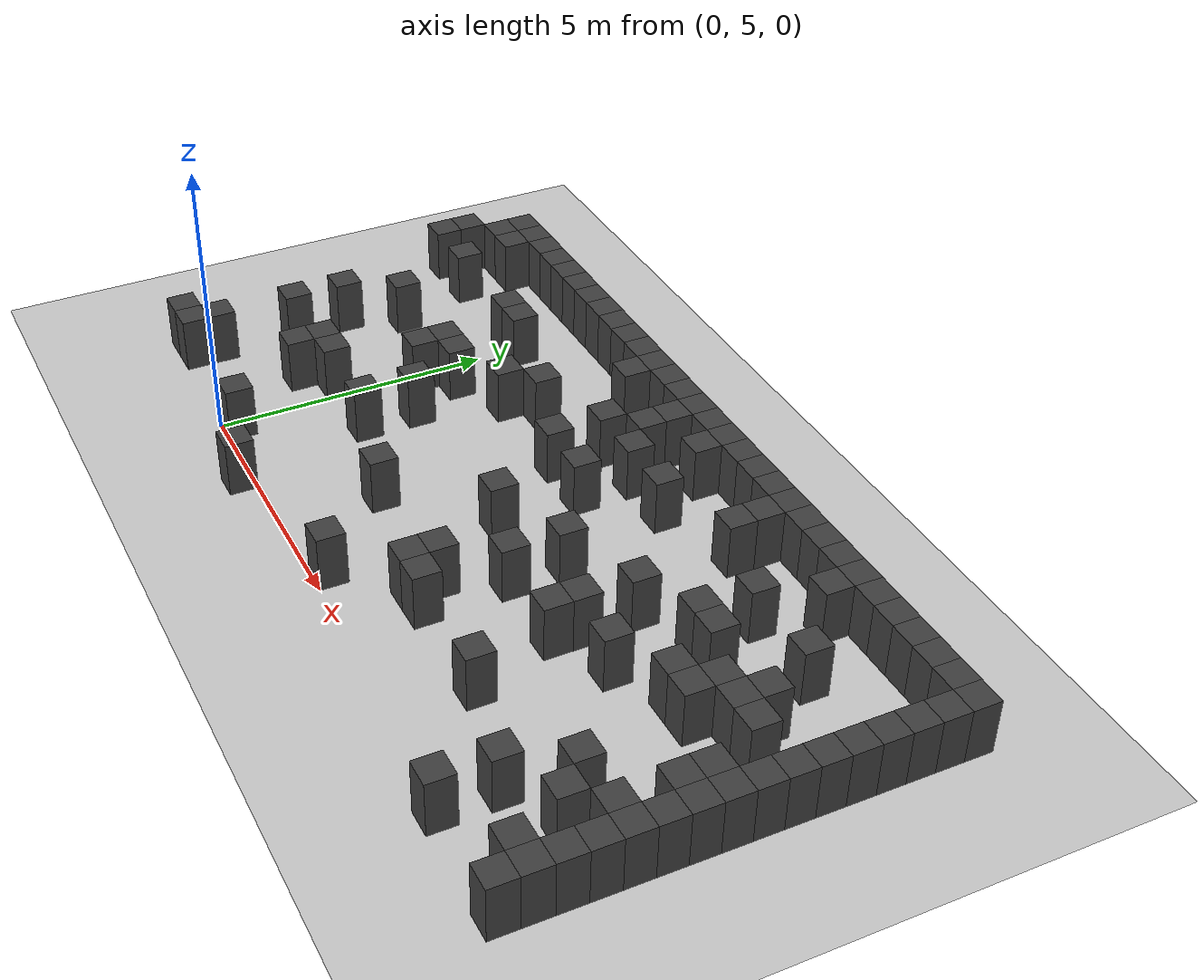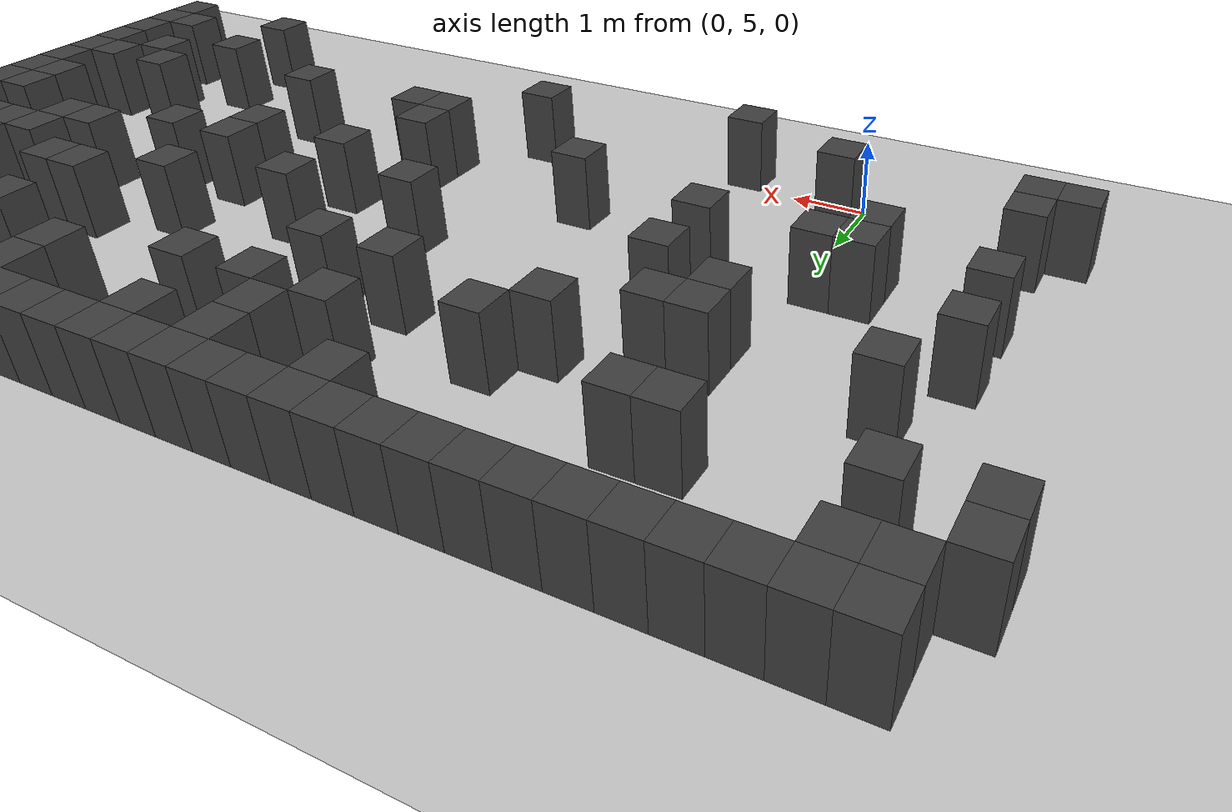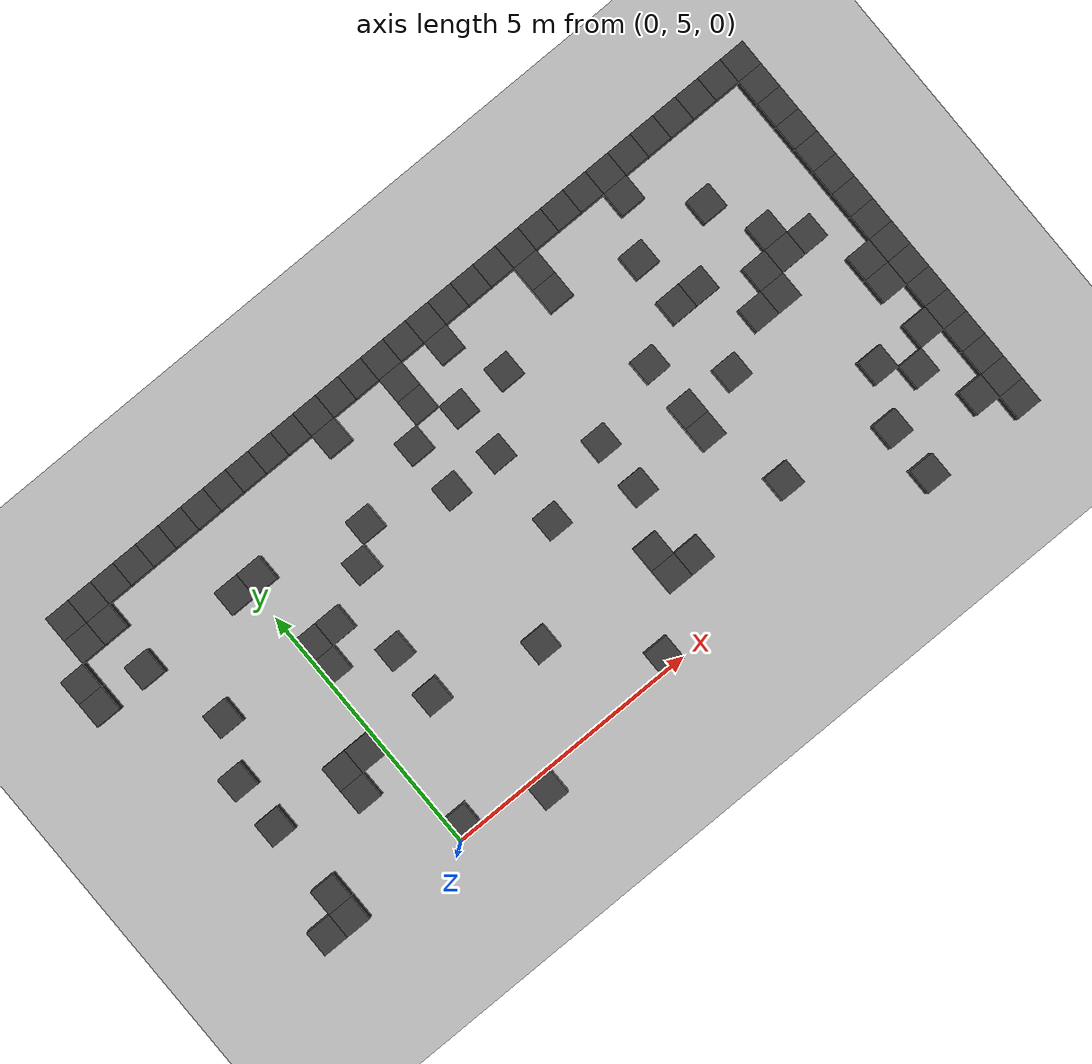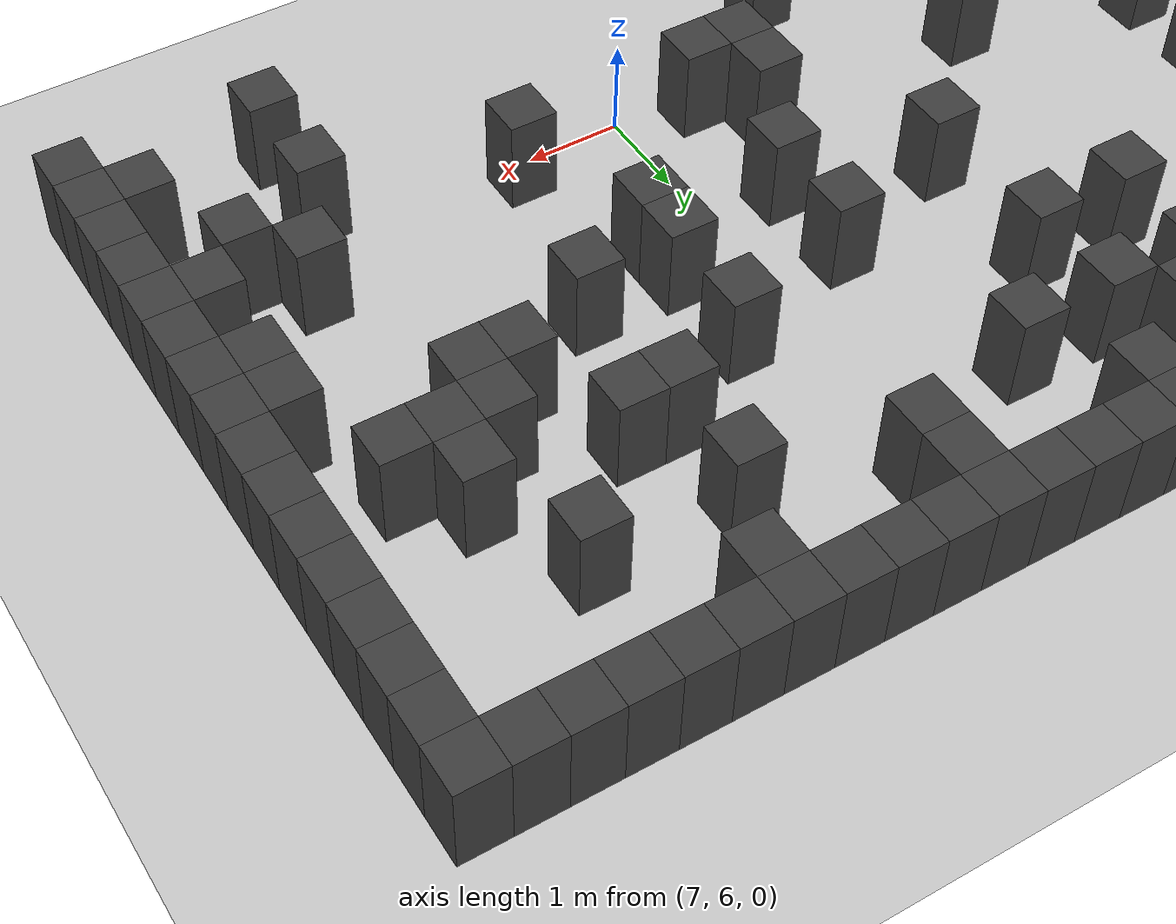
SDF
<sdf version="1.7">
 <world name="map_3200">
  <model name="ground_plane">
   <static>true</static>
   <link name="link">
    <collision name="collision">
     <geometry><plane><normal>0 0 1</normal><size>200 200</size></plane></geometry>
    </collision>
    <visual name="visual">
     <geometry><plane><normal>0 0 1</normal><size>200 200</size></plane></geometry>
     <material><ambient>0.8 0.8 0.8 1</ambient><diffuse>0.8 0.8 0.8 1</diffuse></material>
    </visual>
   </link>
  </model>
  <model name="maze_environment">
   <static>true</static>
   <link name="wall_19">
    <pose>-2.750 12.250 0.500 0 0 0</pose>
    <collision name="col"><geometry><box><size>0.5 0.5 1.0</size></box></geometry></collision>
    <visual name="vis">
     <geometry><box><size>0.5 0.5 1.0</size></box></geometry>
     <material><ambient>0.15 0.15 0.15 1</ambient><diffuse>0.25 0.25 0.25 1</diffuse></material>
    </visual>
   </link>
   <link name="wall_20">
    <pose>-2.250 12.250 0.500 0 0 0</pose>
    <collision name="col"><geometry><box><size>0.5 0.5 1.0</size></box></geometry></collision>
    <visual name="vis">
     <geometry><box><size>0.5 0.5 1.0</size></box></geometry>
     <material><ambient>0.15 0.15 0.15 1</ambient><diffuse>0.25 0.25 0.25 1</diffuse></material>
    </visual>
   </link>
   <link name="wall_21">
    <pose>-1.750 12.250 0.500 0 0 0</pose>
    <collision name="col"><geometry><box><size>0.5 0.5 1.0</size></box></geometry></collision>
    <visual name="vis">
     <geometry><box><size>0.5 0.5 1.0</size></box></geometry>
     <material><ambient>0.15 0.15 0.15 1</ambient><diffuse>0.25 0.25 0.25 1</diffuse></material>
    </visual>
   </link>
   <link name="wall_22">
    <pose>-1.250 12.250 0.500 0 0 0</pose>
    <collision name="col"><geometry><box><size>0.5 0.5 1.0</size></box></geometry></collision>
    <visual name="vis">
     <geometry><box><size>0.5 0.5 1.0</size></box></geometry>
     <material><ambient>0.15 0.15 0.15 1</ambient><diffuse>0.25 0.25 0.25 1</diffuse></material>
    </visual>
   </link>
   <link name="wall_23">
    <pose>-0.750 12.250 0.500 0 0 0</pose>
    <collision name="col"><geometry><box><size>0.5 0.5 1.0</size></box></geometry></collision>
    <visual name="vis">
     <geometry><box><size>0.5 0.5 1.0</size></box></geometry>
     <material><ambient>0.15 0.15 0.15 1</ambient><diffuse>0.25 0.25 0.25 1</diffuse></material>
    </visual>
   </link>
   <link name="wall_24">
    <pose>-0.250 12.250 0.500 0 0 0</pose>
    <collision name="col"><geometry><box><size>0.5 0.5 1.0</size></box></geometry></collision>
    <visual name="vis">
     <geometry><box><size>0.5 0.5 1.0</size></box></geometry>
     <material><ambient>0.15 0.15 0.15 1</ambient><diffuse>0.25 0.25 0.25 1</diffuse></material>
    </visual>
   </link>
   <link name="wall_25">
    <pose>0.250 12.250 0.500 0 0 0</pose>
    <collision name="col"><geometry><box><size>0.5 0.5 1.0</size></box></geometry></collision>
    <visual name="vis">
     <geometry><box><size>0.5 0.5 1.0</size></box></geometry>
     <material><ambient>0.15 0.15 0.15 1</ambient><diffuse>0.25 0.25 0.25 1</diffuse></material>
    </visual>
   </link>
   <link name="wall_26">
    <pose>0.750 12.250 0.500 0 0 0</pose>
    <collision name="col"><geometry><box><size>0.5 0.5 1.0</size></box></geometry></collision>
    <visual name="vis">
     <geometry><box><size>0.5 0.5 1.0</size></box></geometry>
     <material><ambient>0.15 0.15 0.15 1</ambient><diffuse>0.25 0.25 0.25 1</diffuse></material>
    </visual>
   </link>
   <link name="wall_27">
    <pose>1.250 12.250 0.500 0 0 0</pose>
    <collision name="col"><geometry><box><size>0.5 0.5 1.0</size></box></geometry></collision>
    <visual name="vis">
     <geometry><box><size>0.5 0.5 1.0</size></box></geometry>
     <material><ambient>0.15 0.15 0.15 1</ambient><diffuse>0.25 0.25 0.25 1</diffuse></material>
    </visual>
   </link>
   <link name="wall_28">
    <pose>1.750 12.250 0.500 0 0 0</pose>
    <collision name="col"><geometry><box><size>0.5 0.5 1.0</size></box></geometry></collision>
    <visual name="vis">
     <geometry><box><size>0.5 0.5 1.0</size></box></geometry>
     <material><ambient>0.15 0.15 0.15 1</ambient><diffuse>0.25 0.25 0.25 1</diffuse></material>
    </visual>
   </link>
   <link name="wall_29">
    <pose>2.250 12.250 0.500 0 0 0</pose>
    <collision name="col"><geometry><box><size>0.5 0.5 1.0</size></box></geometry></collision>
    <visual name="vis">
     <geometry><box><size>0.5 0.5 1.0</size></box></geometry>
     <material><ambient>0.15 0.15 0.15 1</ambient><diffuse>0.25 0.25 0.25 1</diffuse></material>
    </visual>
   </link>
   <link name="wall_30">
    <pose>2.750 12.250 0.500 0 0 0</pose>
    <collision name="col"><geometry><box><size>0.5 0.5 1.0</size></box></geometry></collision>
    <visual name="vis">
     <geometry><box><size>0.5 0.5 1.0</size></box></geometry>
     <material><ambient>0.15 0.15 0.15 1</ambient><diffuse>0.25 0.25 0.25 1</diffuse></material>
    </visual>
   </link>
   <link name="wall_31">
    <pose>3.250 12.250 0.500 0 0 0</pose>
    <collision name="col"><geometry><box><size>0.5 0.5 1.0</size></box></geometry></collision>
    <visual name="vis">
     <geometry><box><size>0.5 0.5 1.0</size></box></geometry>
     <material><ambient>0.15 0.15 0.15 1</ambient><diffuse>0.25 0.25 0.25 1</diffuse></material>
    </visual>
   </link>
   <link name="wall_32">
    <pose>3.750 12.250 0.500 0 0 0</pose>
    <collision name="col"><geometry><box><size>0.5 0.5 1.0</size></box></geometry></collision>
    <visual name="vis">
     <geometry><box><size>0.5 0.5 1.0</size></box></geometry>
     <material><ambient>0.15 0.15 0.15 1</ambient><diffuse>0.25 0.25 0.25 1</diffuse></material>
    </visual>
   </link>
   <link name="wall_33">
    <pose>4.250 12.250 0.500 0 0 0</pose>
    <collision name="col"><geometry><box><size>0.5 0.5 1.0</size></box></geometry></collision>
    <visual name="vis">
     <geometry><box><size>0.5 0.5 1.0</size></box></geometry>
     <material><ambient>0.15 0.15 0.15 1</ambient><diffuse>0.25 0.25 0.25 1</diffuse></material>
    </visual>
   </link>
   <link name="wall_34">
    <pose>4.750 12.250 0.500 0 0 0</pose>
    <collision name="col"><geometry><box><size>0.5 0.5 1.0</size></box></geometry></collision>
    <visual name="vis">
     <geometry><box><size>0.5 0.5 1.0</size></box></geometry>
     <material><ambient>0.15 0.15 0.15 1</ambient><diffuse>0.25 0.25 0.25 1</diffuse></material>
    </visual>
   </link>
   <link name="wall_35">
    <pose>5.250 12.250 0.500 0 0 0</pose>
    <collision name="col"><geometry><box><size>0.5 0.5 1.0</size></box></geometry></collision>
    <visual name="vis">
     <geometry><box><size>0.5 0.5 1.0</size></box></geometry>
     <material><ambient>0.15 0.15 0.15 1</ambient><diffuse>0.25 0.25 0.25 1</diffuse></material>
    </visual>
   </link>
   <link name="wall_36">
    <pose>5.750 12.250 0.500 0 0 0</pose>
    <collision name="col"><geometry><box><size>0.5 0.5 1.0</size></box></geometry></collision>
    <visual name="vis">
     <geometry><box><size>0.5 0.5 1.0</size></box></geometry>
     <material><ambient>0.15 0.15 0.15 1</ambient><diffuse>0.25 0.25 0.25 1</diffuse></material>
    </visual>
   </link>
   <link name="wall_37">
    <pose>6.250 12.250 0.500 0 0 0</pose>
    <collision name="col"><geometry><box><size>0.5 0.5 1.0</size></box></geometry></collision>
    <visual name="vis">
     <geometry><box><size>0.5 0.5 1.0</size></box></geometry>
     <material><ambient>0.15 0.15 0.15 1</ambient><diffuse>0.25 0.25 0.25 1</diffuse></material>
    </visual>
   </link>
   <link name="wall_38">
    <pose>6.750 12.250 0.500 0 0 0</pose>
    <collision name="col"><geometry><box><size>0.5 0.5 1.0</size></box></geometry></collision>
    <visual name="vis">
     <geometry><box><size>0.5 0.5 1.0</size></box></geometry>
     <material><ambient>0.15 0.15 0.15 1</ambient><diffuse>0.25 0.25 0.25 1</diffuse></material>
    </visual>
   </link>
   <link name="wall_39">
    <pose>7.250 12.250 0.500 0 0 0</pose>
    <collision name="col"><geometry><box><size>0.5 0.5 1.0</size></box></geometry></collision>
    <visual name="vis">
     <geometry><box><size>0.5 0.5 1.0</size></box></geometry>
     <material><ambient>0.15 0.15 0.15 1</ambient><diffuse>0.25 0.25 0.25 1</diffuse></material>
    </visual>
   </link>
   <link name="wall_40">
    <pose>7.750 12.250 0.500 0 0 0</pose>
    <collision name="col"><geometry><box><size>0.5 0.5 1.0</size></box></geometry></collision>
    <visual name="vis">
     <geometry><box><size>0.5 0.5 1.0</size></box></geometry>
     <material><ambient>0.15 0.15 0.15 1</ambient><diffuse>0.25 0.25 0.25 1</diffuse></material>
    </visual>
   </link>
   <link name="wall_41">
    <pose>8.250 12.250 0.500 0 0 0</pose>
    <collision name="col"><geometry><box><size>0.5 0.5 1.0</size></box></geometry></collision>
    <visual name="vis">
     <geometry><box><size>0.5 0.5 1.0</size></box></geometry>
     <material><ambient>0.15 0.15 0.15 1</ambient><diffuse>0.25 0.25 0.25 1</diffuse></material>
    </visual>
   </link>
   <link name="wall_42">
    <pose>8.750 12.250 0.500 0 0 0</pose>
    <collision name="col"><geometry><box><size>0.5 0.5 1.0</size></box></geometry></collision>
    <visual name="vis">
     <geometry><box><size>0.5 0.5 1.0</size></box></geometry>
     <material><ambient>0.15 0.15 0.15 1</ambient><diffuse>0.25 0.25 0.25 1</diffuse></material>
    </visual>
   </link>
   <link name="wall_43">
    <pose>9.250 12.250 0.500 0 0 0</pose>
    <collision name="col"><geometry><box><size>0.5 0.5 1.0</size></box></geometry></collision>
    <visual name="vis">
     <geometry><box><size>0.5 0.5 1.0</size></box></geometry>
     <material><ambient>0.15 0.15 0.15 1</ambient><diffuse>0.25 0.25 0.25 1</diffuse></material>
    </visual>
   </link>
   <link name="wall_44">
    <pose>9.750 12.250 0.500 0 0 0</pose>
    <collision name="col"><geometry><box><size>0.5 0.5 1.0</size></box></geometry></collision>
    <visual name="vis">
     <geometry><box><size>0.5 0.5 1.0</size></box></geometry>
     <material><ambient>0.15 0.15 0.15 1</ambient><diffuse>0.25 0.25 0.25 1</diffuse></material>
    </visual>
   </link>
   <link name="wall_45">
    <pose>10.250 12.250 0.500 0 0 0</pose>
    <collision name="col"><geometry><box><size>0.5 0.5 1.0</size></box></geometry></collision>
    <visual name="vis">
     <geometry><box><size>0.5 0.5 1.0</size></box></geometry>
     <material><ambient>0.15 0.15 0.15 1</ambient><diffuse>0.25 0.25 0.25 1</diffuse></material>
    </visual>
   </link>
   <link name="wall_46">
    <pose>10.750 12.250 0.500 0 0 0</pose>
    <collision name="col"><geometry><box><size>0.5 0.5 1.0</size></box></geometry></collision>
    <visual name="vis">
     <geometry><box><size>0.5 0.5 1.0</size></box></geometry>
     <material><ambient>0.15 0.15 0.15 1</ambient><diffuse>0.25 0.25 0.25 1</diffuse></material>
    </visual>
   </link>
   <link name="wall_47">
    <pose>11.250 12.250 0.500 0 0 0</pose>
    <collision name="col"><geometry><box><size>0.5 0.5 1.0</size></box></geometry></collision>
    <visual name="vis">
     <geometry><box><size>0.5 0.5 1.0</size></box></geometry>
     <material><ambient>0.15 0.15 0.15 1</ambient><diffuse>0.25 0.25 0.25 1</diffuse></material>
    </visual>
   </link>
   <link name="wall_48">
    <pose>11.750 12.250 0.500 0 0 0</pose>
    <collision name="col"><geometry><box><size>0.5 0.5 1.0</size></box></geometry></collision>
    <visual name="vis">
     <geometry><box><size>0.5 0.5 1.0</size></box></geometry>
     <material><ambient>0.15 0.15 0.15 1</ambient><diffuse>0.25 0.25 0.25 1</diffuse></material>
    </visual>
   </link>
   <link name="wall_49">
    <pose>12.250 12.250 0.500 0 0 0</pose>
    <collision name="col"><geometry><box><size>0.5 0.5 1.0</size></box></geometry></collision>
    <visual name="vis">
     <geometry><box><size>0.5 0.5 1.0</size></box></geometry>
     <material><ambient>0.15 0.15 0.15 1</ambient><diffuse>0.25 0.25 0.25 1</diffuse></material>
    </visual>
   </link>
   <link name="wall_53">
    <pose>-2.750 11.750 0.500 0 0 0</pose>
    <collision name="col"><geometry><box><size>0.5 0.5 1.0</size></box></geometry></collision>
    <visual name="vis">
     <geometry><box><size>0.5 0.5 1.0</size></box></geometry>
     <material><ambient>0.15 0.15 0.15 1</ambient><diffuse>0.25 0.25 0.25 1</diffuse></material>
    </visual>
   </link>
   <link name="wall_54">
    <pose>-2.250 11.750 0.500 0 0 0</pose>
    <collision name="col"><geometry><box><size>0.5 0.5 1.0</size></box></geometry></collision>
    <visual name="vis">
     <geometry><box><size>0.5 0.5 1.0</size></box></geometry>
     <material><ambient>0.15 0.15 0.15 1</ambient><diffuse>0.25 0.25 0.25 1</diffuse></material>
    </visual>
   </link>
   <link name="wall_55">
    <pose>2.750 11.750 0.500 0 0 0</pose>
    <collision name="col"><geometry><box><size>0.5 0.5 1.0</size></box></geometry></collision>
    <visual name="vis">
     <geometry><box><size>0.5 0.5 1.0</size></box></geometry>
     <material><ambient>0.15 0.15 0.15 1</ambient><diffuse>0.25 0.25 0.25 1</diffuse></material>
    </visual>
   </link>
   <link name="wall_56">
    <pose>4.250 11.750 0.500 0 0 0</pose>
    <collision name="col"><geometry><box><size>0.5 0.5 1.0</size></box></geometry></collision>
    <visual name="vis">
     <geometry><box><size>0.5 0.5 1.0</size></box></geometry>
     <material><ambient>0.15 0.15 0.15 1</ambient><diffuse>0.25 0.25 0.25 1</diffuse></material>
    </visual>
   </link>
   <link name="wall_57">
    <pose>5.250 11.750 0.500 0 0 0</pose>
    <collision name="col"><geometry><box><size>0.5 0.5 1.0</size></box></geometry></collision>
    <visual name="vis">
     <geometry><box><size>0.5 0.5 1.0</size></box></geometry>
     <material><ambient>0.15 0.15 0.15 1</ambient><diffuse>0.25 0.25 0.25 1</diffuse></material>
    </visual>
   </link>
   <link name="wall_58">
    <pose>7.250 11.750 0.500 0 0 0</pose>
    <collision name="col"><geometry><box><size>0.5 0.5 1.0</size></box></geometry></collision>
    <visual name="vis">
     <geometry><box><size>0.5 0.5 1.0</size></box></geometry>
     <material><ambient>0.15 0.15 0.15 1</ambient><diffuse>0.25 0.25 0.25 1</diffuse></material>
    </visual>
   </link>
   <link name="wall_59">
    <pose>9.250 11.750 0.500 0 0 0</pose>
    <collision name="col"><geometry><box><size>0.5 0.5 1.0</size></box></geometry></collision>
    <visual name="vis">
     <geometry><box><size>0.5 0.5 1.0</size></box></geometry>
     <material><ambient>0.15 0.15 0.15 1</ambient><diffuse>0.25 0.25 0.25 1</diffuse></material>
    </visual>
   </link>
   <link name="wall_60">
    <pose>12.250 11.750 0.500 0 0 0</pose>
    <collision name="col"><geometry><box><size>0.5 0.5 1.0</size></box></geometry></collision>
    <visual name="vis">
     <geometry><box><size>0.5 0.5 1.0</size></box></geometry>
     <material><ambient>0.15 0.15 0.15 1</ambient><diffuse>0.25 0.25 0.25 1</diffuse></material>
    </visual>
   </link>
   <link name="wall_64">
    <pose>-3.250 11.250 0.500 0 0 0</pose>
    <collision name="col"><geometry><box><size>0.5 0.5 1.0</size></box></geometry></collision>
    <visual name="vis">
     <geometry><box><size>0.5 0.5 1.0</size></box></geometry>
     <material><ambient>0.15 0.15 0.15 1</ambient><diffuse>0.25 0.25 0.25 1</diffuse></material>
    </visual>
   </link>
   <link name="wall_65">
    <pose>4.250 11.250 0.500 0 0 0</pose>
    <collision name="col"><geometry><box><size>0.5 0.5 1.0</size></box></geometry></collision>
    <visual name="vis">
     <geometry><box><size>0.5 0.5 1.0</size></box></geometry>
     <material><ambient>0.15 0.15 0.15 1</ambient><diffuse>0.25 0.25 0.25 1</diffuse></material>
    </visual>
   </link>
   <link name="wall_66">
    <pose>7.250 11.250 0.500 0 0 0</pose>
    <collision name="col"><geometry><box><size>0.5 0.5 1.0</size></box></geometry></collision>
    <visual name="vis">
     <geometry><box><size>0.5 0.5 1.0</size></box></geometry>
     <material><ambient>0.15 0.15 0.15 1</ambient><diffuse>0.25 0.25 0.25 1</diffuse></material>
    </visual>
   </link>
   <link name="wall_67">
    <pose>12.250 11.250 0.500 0 0 0</pose>
    <collision name="col"><geometry><box><size>0.5 0.5 1.0</size></box></geometry></collision>
    <visual name="vis">
     <geometry><box><size>0.5 0.5 1.0</size></box></geometry>
     <material><ambient>0.15 0.15 0.15 1</ambient><diffuse>0.25 0.25 0.25 1</diffuse></material>
    </visual>
   </link>
   <link name="wall_71">
    <pose>-3.250 10.750 0.500 0 0 0</pose>
    <collision name="col"><geometry><box><size>0.5 0.5 1.0</size></box></geometry></collision>
    <visual name="vis">
     <geometry><box><size>0.5 0.5 1.0</size></box></geometry>
     <material><ambient>0.15 0.15 0.15 1</ambient><diffuse>0.25 0.25 0.25 1</diffuse></material>
    </visual>
   </link>
   <link name="wall_72">
    <pose>-2.250 10.750 0.500 0 0 0</pose>
    <collision name="col"><geometry><box><size>0.5 0.5 1.0</size></box></geometry></collision>
    <visual name="vis">
     <geometry><box><size>0.5 0.5 1.0</size></box></geometry>
     <material><ambient>0.15 0.15 0.15 1</ambient><diffuse>0.25 0.25 0.25 1</diffuse></material>
    </visual>
   </link>
   <link name="wall_73">
    <pose>-0.250 10.750 0.500 0 0 0</pose>
    <collision name="col"><geometry><box><size>0.5 0.5 1.0</size></box></geometry></collision>
    <visual name="vis">
     <geometry><box><size>0.5 0.5 1.0</size></box></geometry>
     <material><ambient>0.15 0.15 0.15 1</ambient><diffuse>0.25 0.25 0.25 1</diffuse></material>
    </visual>
   </link>
   <link name="wall_74">
    <pose>0.250 10.750 0.500 0 0 0</pose>
    <collision name="col"><geometry><box><size>0.5 0.5 1.0</size></box></geometry></collision>
    <visual name="vis">
     <geometry><box><size>0.5 0.5 1.0</size></box></geometry>
     <material><ambient>0.15 0.15 0.15 1</ambient><diffuse>0.25 0.25 0.25 1</diffuse></material>
    </visual>
   </link>
   <link name="wall_75">
    <pose>3.750 10.750 0.500 0 0 0</pose>
    <collision name="col"><geometry><box><size>0.5 0.5 1.0</size></box></geometry></collision>
    <visual name="vis">
     <geometry><box><size>0.5 0.5 1.0</size></box></geometry>
     <material><ambient>0.15 0.15 0.15 1</ambient><diffuse>0.25 0.25 0.25 1</diffuse></material>
    </visual>
   </link>
   <link name="wall_76">
    <pose>4.750 10.750 0.500 0 0 0</pose>
    <collision name="col"><geometry><box><size>0.5 0.5 1.0</size></box></geometry></collision>
    <visual name="vis">
     <geometry><box><size>0.5 0.5 1.0</size></box></geometry>
     <material><ambient>0.15 0.15 0.15 1</ambient><diffuse>0.25 0.25 0.25 1</diffuse></material>
    </visual>
   </link>
   <link name="wall_77">
    <pose>5.750 10.750 0.500 0 0 0</pose>
    <collision name="col"><geometry><box><size>0.5 0.5 1.0</size></box></geometry></collision>
    <visual name="vis">
     <geometry><box><size>0.5 0.5 1.0</size></box></geometry>
     <material><ambient>0.15 0.15 0.15 1</ambient><diffuse>0.25 0.25 0.25 1</diffuse></material>
    </visual>
   </link>
   <link name="wall_78">
    <pose>8.750 10.750 0.500 0 0 0</pose>
    <collision name="col"><geometry><box><size>0.5 0.5 1.0</size></box></geometry></collision>
    <visual name="vis">
     <geometry><box><size>0.5 0.5 1.0</size></box></geometry>
     <material><ambient>0.15 0.15 0.15 1</ambient><diffuse>0.25 0.25 0.25 1</diffuse></material>
    </visual>
   </link>
   <link name="wall_79">
    <pose>10.250 10.750 0.500 0 0 0</pose>
    <collision name="col"><geometry><box><size>0.5 0.5 1.0</size></box></geometry></collision>
    <visual name="vis">
     <geometry><box><size>0.5 0.5 1.0</size></box></geometry>
     <material><ambient>0.15 0.15 0.15 1</ambient><diffuse>0.25 0.25 0.25 1</diffuse></material>
    </visual>
   </link>
   <link name="wall_80">
    <pose>12.250 10.750 0.500 0 0 0</pose>
    <collision name="col"><geometry><box><size>0.5 0.5 1.0</size></box></geometry></collision>
    <visual name="vis">
     <geometry><box><size>0.5 0.5 1.0</size></box></geometry>
     <material><ambient>0.15 0.15 0.15 1</ambient><diffuse>0.25 0.25 0.25 1</diffuse></material>
    </visual>
   </link>
   <link name="wall_83">
    <pose>2.250 10.250 0.500 0 0 0</pose>
    <collision name="col"><geometry><box><size>0.5 0.5 1.0</size></box></geometry></collision>
    <visual name="vis">
     <geometry><box><size>0.5 0.5 1.0</size></box></geometry>
     <material><ambient>0.15 0.15 0.15 1</ambient><diffuse>0.25 0.25 0.25 1</diffuse></material>
    </visual>
   </link>
   <link name="wall_84">
    <pose>12.250 10.250 0.500 0 0 0</pose>
    <collision name="col"><geometry><box><size>0.5 0.5 1.0</size></box></geometry></collision>
    <visual name="vis">
     <geometry><box><size>0.5 0.5 1.0</size></box></geometry>
     <material><ambient>0.15 0.15 0.15 1</ambient><diffuse>0.25 0.25 0.25 1</diffuse></material>
    </visual>
   </link>
   <link name="wall_89">
    <pose>1.750 9.750 0.500 0 0 0</pose>
    <collision name="col"><geometry><box><size>0.5 0.5 1.0</size></box></geometry></collision>
    <visual name="vis">
     <geometry><box><size>0.5 0.5 1.0</size></box></geometry>
     <material><ambient>0.15 0.15 0.15 1</ambient><diffuse>0.25 0.25 0.25 1</diffuse></material>
    </visual>
   </link>
   <link name="wall_90">
    <pose>3.750 9.750 0.500 0 0 0</pose>
    <collision name="col"><geometry><box><size>0.5 0.5 1.0</size></box></geometry></collision>
    <visual name="vis">
     <geometry><box><size>0.5 0.5 1.0</size></box></geometry>
     <material><ambient>0.15 0.15 0.15 1</ambient><diffuse>0.25 0.25 0.25 1</diffuse></material>
    </visual>
   </link>
   <link name="wall_91">
    <pose>4.750 9.750 0.500 0 0 0</pose>
    <collision name="col"><geometry><box><size>0.5 0.5 1.0</size></box></geometry></collision>
    <visual name="vis">
     <geometry><box><size>0.5 0.5 1.0</size></box></geometry>
     <material><ambient>0.15 0.15 0.15 1</ambient><diffuse>0.25 0.25 0.25 1</diffuse></material>
    </visual>
   </link>
   <link name="wall_92">
    <pose>8.750 9.750 0.500 0 0 0</pose>
    <collision name="col"><geometry><box><size>0.5 0.5 1.0</size></box></geometry></collision>
    <visual name="vis">
     <geometry><box><size>0.5 0.5 1.0</size></box></geometry>
     <material><ambient>0.15 0.15 0.15 1</ambient><diffuse>0.25 0.25 0.25 1</diffuse></material>
    </visual>
   </link>
   <link name="wall_93">
    <pose>9.250 9.750 0.500 0 0 0</pose>
    <collision name="col"><geometry><box><size>0.5 0.5 1.0</size></box></geometry></collision>
    <visual name="vis">
     <geometry><box><size>0.5 0.5 1.0</size></box></geometry>
     <material><ambient>0.15 0.15 0.15 1</ambient><diffuse>0.25 0.25 0.25 1</diffuse></material>
    </visual>
   </link>
   <link name="wall_94">
    <pose>10.750 9.750 0.500 0 0 0</pose>
    <collision name="col"><geometry><box><size>0.5 0.5 1.0</size></box></geometry></collision>
    <visual name="vis">
     <geometry><box><size>0.5 0.5 1.0</size></box></geometry>
     <material><ambient>0.15 0.15 0.15 1</ambient><diffuse>0.25 0.25 0.25 1</diffuse></material>
    </visual>
   </link>
   <link name="wall_95">
    <pose>12.250 9.750 0.500 0 0 0</pose>
    <collision name="col"><geometry><box><size>0.5 0.5 1.0</size></box></geometry></collision>
    <visual name="vis">
     <geometry><box><size>0.5 0.5 1.0</size></box></geometry>
     <material><ambient>0.15 0.15 0.15 1</ambient><diffuse>0.25 0.25 0.25 1</diffuse></material>
    </visual>
   </link>
   <link name="wall_98">
    <pose>-1.750 9.250 0.500 0 0 0</pose>
    <collision name="col"><geometry><box><size>0.5 0.5 1.0</size></box></geometry></collision>
    <visual name="vis">
     <geometry><box><size>0.5 0.5 1.0</size></box></geometry>
     <material><ambient>0.15 0.15 0.15 1</ambient><diffuse>0.25 0.25 0.25 1</diffuse></material>
    </visual>
   </link>
   <link name="wall_99">
    <pose>0.250 9.250 0.500 0 0 0</pose>
    <collision name="col"><geometry><box><size>0.5 0.5 1.0</size></box></geometry></collision>
    <visual name="vis">
     <geometry><box><size>0.5 0.5 1.0</size></box></geometry>
     <material><ambient>0.15 0.15 0.15 1</ambient><diffuse>0.25 0.25 0.25 1</diffuse></material>
    </visual>
   </link>
   <link name="wall_100">
    <pose>0.750 9.250 0.500 0 0 0</pose>
    <collision name="col"><geometry><box><size>0.5 0.5 1.0</size></box></geometry></collision>
    <visual name="vis">
     <geometry><box><size>0.5 0.5 1.0</size></box></geometry>
     <material><ambient>0.15 0.15 0.15 1</ambient><diffuse>0.25 0.25 0.25 1</diffuse></material>
    </visual>
   </link>
   <link name="wall_101">
    <pose>7.750 9.250 0.500 0 0 0</pose>
    <collision name="col"><geometry><box><size>0.5 0.5 1.0</size></box></geometry></collision>
    <visual name="vis">
     <geometry><box><size>0.5 0.5 1.0</size></box></geometry>
     <material><ambient>0.15 0.15 0.15 1</ambient><diffuse>0.25 0.25 0.25 1</diffuse></material>
    </visual>
   </link>
   <link name="wall_102">
    <pose>10.250 9.250 0.500 0 0 0</pose>
    <collision name="col"><geometry><box><size>0.5 0.5 1.0</size></box></geometry></collision>
    <visual name="vis">
     <geometry><box><size>0.5 0.5 1.0</size></box></geometry>
     <material><ambient>0.15 0.15 0.15 1</ambient><diffuse>0.25 0.25 0.25 1</diffuse></material>
    </visual>
   </link>
   <link name="wall_103">
    <pose>10.750 9.250 0.500 0 0 0</pose>
    <collision name="col"><geometry><box><size>0.5 0.5 1.0</size></box></geometry></collision>
    <visual name="vis">
     <geometry><box><size>0.5 0.5 1.0</size></box></geometry>
     <material><ambient>0.15 0.15 0.15 1</ambient><diffuse>0.25 0.25 0.25 1</diffuse></material>
    </visual>
   </link>
   <link name="wall_104">
    <pose>11.250 9.250 0.500 0 0 0</pose>
    <collision name="col"><geometry><box><size>0.5 0.5 1.0</size></box></geometry></collision>
    <visual name="vis">
     <geometry><box><size>0.5 0.5 1.0</size></box></geometry>
     <material><ambient>0.15 0.15 0.15 1</ambient><diffuse>0.25 0.25 0.25 1</diffuse></material>
    </visual>
   </link>
   <link name="wall_105">
    <pose>12.250 9.250 0.500 0 0 0</pose>
    <collision name="col"><geometry><box><size>0.5 0.5 1.0</size></box></geometry></collision>
    <visual name="vis">
     <geometry><box><size>0.5 0.5 1.0</size></box></geometry>
     <material><ambient>0.15 0.15 0.15 1</ambient><diffuse>0.25 0.25 0.25 1</diffuse></material>
    </visual>
   </link>
   <link name="wall_110">
    <pose>0.250 8.750 0.500 0 0 0</pose>
    <collision name="col"><geometry><box><size>0.5 0.5 1.0</size></box></geometry></collision>
    <visual name="vis">
     <geometry><box><size>0.5 0.5 1.0</size></box></geometry>
     <material><ambient>0.15 0.15 0.15 1</ambient><diffuse>0.25 0.25 0.25 1</diffuse></material>
    </visual>
   </link>
   <link name="wall_111">
    <pose>6.250 8.750 0.500 0 0 0</pose>
    <collision name="col"><geometry><box><size>0.5 0.5 1.0</size></box></geometry></collision>
    <visual name="vis">
     <geometry><box><size>0.5 0.5 1.0</size></box></geometry>
     <material><ambient>0.15 0.15 0.15 1</ambient><diffuse>0.25 0.25 0.25 1</diffuse></material>
    </visual>
   </link>
   <link name="wall_112">
    <pose>9.750 8.750 0.500 0 0 0</pose>
    <collision name="col"><geometry><box><size>0.5 0.5 1.0</size></box></geometry></collision>
    <visual name="vis">
     <geometry><box><size>0.5 0.5 1.0</size></box></geometry>
     <material><ambient>0.15 0.15 0.15 1</ambient><diffuse>0.25 0.25 0.25 1</diffuse></material>
    </visual>
   </link>
   <link name="wall_113">
    <pose>10.250 8.750 0.500 0 0 0</pose>
    <collision name="col"><geometry><box><size>0.5 0.5 1.0</size></box></geometry></collision>
    <visual name="vis">
     <geometry><box><size>0.5 0.5 1.0</size></box></geometry>
     <material><ambient>0.15 0.15 0.15 1</ambient><diffuse>0.25 0.25 0.25 1</diffuse></material>
    </visual>
   </link>
   <link name="wall_114">
    <pose>12.250 8.750 0.500 0 0 0</pose>
    <collision name="col"><geometry><box><size>0.5 0.5 1.0</size></box></geometry></collision>
    <visual name="vis">
     <geometry><box><size>0.5 0.5 1.0</size></box></geometry>
     <material><ambient>0.15 0.15 0.15 1</ambient><diffuse>0.25 0.25 0.25 1</diffuse></material>
    </visual>
   </link>
   <link name="wall_117">
    <pose>-2.250 8.250 0.500 0 0 0</pose>
    <collision name="col"><geometry><box><size>0.5 0.5 1.0</size></box></geometry></collision>
    <visual name="vis">
     <geometry><box><size>0.5 0.5 1.0</size></box></geometry>
     <material><ambient>0.15 0.15 0.15 1</ambient><diffuse>0.25 0.25 0.25 1</diffuse></material>
    </visual>
   </link>
   <link name="wall_118">
    <pose>1.250 8.250 0.500 0 0 0</pose>
    <collision name="col"><geometry><box><size>0.5 0.5 1.0</size></box></geometry></collision>
    <visual name="vis">
     <geometry><box><size>0.5 0.5 1.0</size></box></geometry>
     <material><ambient>0.15 0.15 0.15 1</ambient><diffuse>0.25 0.25 0.25 1</diffuse></material>
    </visual>
   </link>
   <link name="wall_119">
    <pose>4.750 8.250 0.500 0 0 0</pose>
    <collision name="col"><geometry><box><size>0.5 0.5 1.0</size></box></geometry></collision>
    <visual name="vis">
     <geometry><box><size>0.5 0.5 1.0</size></box></geometry>
     <material><ambient>0.15 0.15 0.15 1</ambient><diffuse>0.25 0.25 0.25 1</diffuse></material>
    </visual>
   </link>
   <link name="wall_120">
    <pose>7.750 8.250 0.500 0 0 0</pose>
    <collision name="col"><geometry><box><size>0.5 0.5 1.0</size></box></geometry></collision>
    <visual name="vis">
     <geometry><box><size>0.5 0.5 1.0</size></box></geometry>
     <material><ambient>0.15 0.15 0.15 1</ambient><diffuse>0.25 0.25 0.25 1</diffuse></material>
    </visual>
   </link>
   <link name="wall_121">
    <pose>8.750 8.250 0.500 0 0 0</pose>
    <collision name="col"><geometry><box><size>0.5 0.5 1.0</size></box></geometry></collision>
    <visual name="vis">
     <geometry><box><size>0.5 0.5 1.0</size></box></geometry>
     <material><ambient>0.15 0.15 0.15 1</ambient><diffuse>0.25 0.25 0.25 1</diffuse></material>
    </visual>
   </link>
   <link name="wall_122">
    <pose>11.750 8.250 0.500 0 0 0</pose>
    <collision name="col"><geometry><box><size>0.5 0.5 1.0</size></box></geometry></collision>
    <visual name="vis">
     <geometry><box><size>0.5 0.5 1.0</size></box></geometry>
     <material><ambient>0.15 0.15 0.15 1</ambient><diffuse>0.25 0.25 0.25 1</diffuse></material>
    </visual>
   </link>
   <link name="wall_123">
    <pose>12.250 8.250 0.500 0 0 0</pose>
    <collision name="col"><geometry><box><size>0.5 0.5 1.0</size></box></geometry></collision>
    <visual name="vis">
     <geometry><box><size>0.5 0.5 1.0</size></box></geometry>
     <material><ambient>0.15 0.15 0.15 1</ambient><diffuse>0.25 0.25 0.25 1</diffuse></material>
    </visual>
   </link>
   <link name="wall_128">
    <pose>6.250 7.750 0.500 0 0 0</pose>
    <collision name="col"><geometry><box><size>0.5 0.5 1.0</size></box></geometry></collision>
    <visual name="vis">
     <geometry><box><size>0.5 0.5 1.0</size></box></geometry>
     <material><ambient>0.15 0.15 0.15 1</ambient><diffuse>0.25 0.25 0.25 1</diffuse></material>
    </visual>
   </link>
   <link name="wall_129">
    <pose>7.750 7.750 0.500 0 0 0</pose>
    <collision name="col"><geometry><box><size>0.5 0.5 1.0</size></box></geometry></collision>
    <visual name="vis">
     <geometry><box><size>0.5 0.5 1.0</size></box></geometry>
     <material><ambient>0.15 0.15 0.15 1</ambient><diffuse>0.25 0.25 0.25 1</diffuse></material>
    </visual>
   </link>
   <link name="wall_130">
    <pose>11.750 7.750 0.500 0 0 0</pose>
    <collision name="col"><geometry><box><size>0.5 0.5 1.0</size></box></geometry></collision>
    <visual name="vis">
     <geometry><box><size>0.5 0.5 1.0</size></box></geometry>
     <material><ambient>0.15 0.15 0.15 1</ambient><diffuse>0.25 0.25 0.25 1</diffuse></material>
    </visual>
   </link>
   <link name="wall_131">
    <pose>12.250 7.750 0.500 0 0 0</pose>
    <collision name="col"><geometry><box><size>0.5 0.5 1.0</size></box></geometry></collision>
    <visual name="vis">
     <geometry><box><size>0.5 0.5 1.0</size></box></geometry>
     <material><ambient>0.15 0.15 0.15 1</ambient><diffuse>0.25 0.25 0.25 1</diffuse></material>
    </visual>
   </link>
   <link name="wall_136">
    <pose>-2.250 7.250 0.500 0 0 0</pose>
    <collision name="col"><geometry><box><size>0.5 0.5 1.0</size></box></geometry></collision>
    <visual name="vis">
     <geometry><box><size>0.5 0.5 1.0</size></box></geometry>
     <material><ambient>0.15 0.15 0.15 1</ambient><diffuse>0.25 0.25 0.25 1</diffuse></material>
    </visual>
   </link>
   <link name="wall_137">
    <pose>-0.750 7.250 0.500 0 0 0</pose>
    <collision name="col"><geometry><box><size>0.5 0.5 1.0</size></box></geometry></collision>
    <visual name="vis">
     <geometry><box><size>0.5 0.5 1.0</size></box></geometry>
     <material><ambient>0.15 0.15 0.15 1</ambient><diffuse>0.25 0.25 0.25 1</diffuse></material>
    </visual>
   </link>
   <link name="wall_138">
    <pose>-0.250 7.250 0.500 0 0 0</pose>
    <collision name="col"><geometry><box><size>0.5 0.5 1.0</size></box></geometry></collision>
    <visual name="vis">
     <geometry><box><size>0.5 0.5 1.0</size></box></geometry>
     <material><ambient>0.15 0.15 0.15 1</ambient><diffuse>0.25 0.25 0.25 1</diffuse></material>
    </visual>
   </link>
   <link name="wall_139">
    <pose>1.250 7.250 0.500 0 0 0</pose>
    <collision name="col"><geometry><box><size>0.5 0.5 1.0</size></box></geometry></collision>
    <visual name="vis">
     <geometry><box><size>0.5 0.5 1.0</size></box></geometry>
     <material><ambient>0.15 0.15 0.15 1</ambient><diffuse>0.25 0.25 0.25 1</diffuse></material>
    </visual>
   </link>
   <link name="wall_140">
    <pose>12.250 7.250 0.500 0 0 0</pose>
    <collision name="col"><geometry><box><size>0.5 0.5 1.0</size></box></geometry></collision>
    <visual name="vis">
     <geometry><box><size>0.5 0.5 1.0</size></box></geometry>
     <material><ambient>0.15 0.15 0.15 1</ambient><diffuse>0.25 0.25 0.25 1</diffuse></material>
    </visual>
   </link>
   <link name="wall_145">
    <pose>-0.750 6.750 0.500 0 0 0</pose>
    <collision name="col"><geometry><box><size>0.5 0.5 1.0</size></box></geometry></collision>
    <visual name="vis">
     <geometry><box><size>0.5 0.5 1.0</size></box></geometry>
     <material><ambient>0.15 0.15 0.15 1</ambient><diffuse>0.25 0.25 0.25 1</diffuse></material>
    </visual>
   </link>
   <link name="wall_146">
    <pose>3.250 6.750 0.500 0 0 0</pose>
    <collision name="col"><geometry><box><size>0.5 0.5 1.0</size></box></geometry></collision>
    <visual name="vis">
     <geometry><box><size>0.5 0.5 1.0</size></box></geometry>
     <material><ambient>0.15 0.15 0.15 1</ambient><diffuse>0.25 0.25 0.25 1</diffuse></material>
    </visual>
   </link>
   <link name="wall_147">
    <pose>5.750 6.750 0.500 0 0 0</pose>
    <collision name="col"><geometry><box><size>0.5 0.5 1.0</size></box></geometry></collision>
    <visual name="vis">
     <geometry><box><size>0.5 0.5 1.0</size></box></geometry>
     <material><ambient>0.15 0.15 0.15 1</ambient><diffuse>0.25 0.25 0.25 1</diffuse></material>
    </visual>
   </link>
   <link name="wall_148">
    <pose>10.750 6.750 0.500 0 0 0</pose>
    <collision name="col"><geometry><box><size>0.5 0.5 1.0</size></box></geometry></collision>
    <visual name="vis">
     <geometry><box><size>0.5 0.5 1.0</size></box></geometry>
     <material><ambient>0.15 0.15 0.15 1</ambient><diffuse>0.25 0.25 0.25 1</diffuse></material>
    </visual>
   </link>
   <link name="wall_149">
    <pose>11.750 6.750 0.500 0 0 0</pose>
    <collision name="col"><geometry><box><size>0.5 0.5 1.0</size></box></geometry></collision>
    <visual name="vis">
     <geometry><box><size>0.5 0.5 1.0</size></box></geometry>
     <material><ambient>0.15 0.15 0.15 1</ambient><diffuse>0.25 0.25 0.25 1</diffuse></material>
    </visual>
   </link>
   <link name="wall_150">
    <pose>12.250 6.750 0.500 0 0 0</pose>
    <collision name="col"><geometry><box><size>0.5 0.5 1.0</size></box></geometry></collision>
    <visual name="vis">
     <geometry><box><size>0.5 0.5 1.0</size></box></geometry>
     <material><ambient>0.15 0.15 0.15 1</ambient><diffuse>0.25 0.25 0.25 1</diffuse></material>
    </visual>
   </link>
   <link name="wall_156">
    <pose>5.750 6.250 0.500 0 0 0</pose>
    <collision name="col"><geometry><box><size>0.5 0.5 1.0</size></box></geometry></collision>
    <visual name="vis">
     <geometry><box><size>0.5 0.5 1.0</size></box></geometry>
     <material><ambient>0.15 0.15 0.15 1</ambient><diffuse>0.25 0.25 0.25 1</diffuse></material>
    </visual>
   </link>
   <link name="wall_157">
    <pose>6.250 6.250 0.500 0 0 0</pose>
    <collision name="col"><geometry><box><size>0.5 0.5 1.0</size></box></geometry></collision>
    <visual name="vis">
     <geometry><box><size>0.5 0.5 1.0</size></box></geometry>
     <material><ambient>0.15 0.15 0.15 1</ambient><diffuse>0.25 0.25 0.25 1</diffuse></material>
    </visual>
   </link>
   <link name="wall_158">
    <pose>8.250 6.250 0.500 0 0 0</pose>
    <collision name="col"><geometry><box><size>0.5 0.5 1.0</size></box></geometry></collision>
    <visual name="vis">
     <geometry><box><size>0.5 0.5 1.0</size></box></geometry>
     <material><ambient>0.15 0.15 0.15 1</ambient><diffuse>0.25 0.25 0.25 1</diffuse></material>
    </visual>
   </link>
   <link name="wall_159">
    <pose>11.250 6.250 0.500 0 0 0</pose>
    <collision name="col"><geometry><box><size>0.5 0.5 1.0</size></box></geometry></collision>
    <visual name="vis">
     <geometry><box><size>0.5 0.5 1.0</size></box></geometry>
     <material><ambient>0.15 0.15 0.15 1</ambient><diffuse>0.25 0.25 0.25 1</diffuse></material>
    </visual>
   </link>
   <link name="wall_160">
    <pose>12.250 6.250 0.500 0 0 0</pose>
    <collision name="col"><geometry><box><size>0.5 0.5 1.0</size></box></geometry></collision>
    <visual name="vis">
     <geometry><box><size>0.5 0.5 1.0</size></box></geometry>
     <material><ambient>0.15 0.15 0.15 1</ambient><diffuse>0.25 0.25 0.25 1</diffuse></material>
    </visual>
   </link>
   <link name="wall_163">
    <pose>-2.250 5.750 0.500 0 0 0</pose>
    <collision name="col"><geometry><box><size>0.5 0.5 1.0</size></box></geometry></collision>
    <visual name="vis">
     <geometry><box><size>0.5 0.5 1.0</size></box></geometry>
     <material><ambient>0.15 0.15 0.15 1</ambient><diffuse>0.25 0.25 0.25 1</diffuse></material>
    </visual>
   </link>
   <link name="wall_164">
    <pose>10.250 5.750 0.500 0 0 0</pose>
    <collision name="col"><geometry><box><size>0.5 0.5 1.0</size></box></geometry></collision>
    <visual name="vis">
     <geometry><box><size>0.5 0.5 1.0</size></box></geometry>
     <material><ambient>0.15 0.15 0.15 1</ambient><diffuse>0.25 0.25 0.25 1</diffuse></material>
    </visual>
   </link>
   <link name="wall_165">
    <pose>12.250 5.750 0.500 0 0 0</pose>
    <collision name="col"><geometry><box><size>0.5 0.5 1.0</size></box></geometry></collision>
    <visual name="vis">
     <geometry><box><size>0.5 0.5 1.0</size></box></geometry>
     <material><ambient>0.15 0.15 0.15 1</ambient><diffuse>0.25 0.25 0.25 1</diffuse></material>
    </visual>
   </link>
   <link name="wall_168">
    <pose>-2.750 5.250 0.500 0 0 0</pose>
    <collision name="col"><geometry><box><size>0.5 0.5 1.0</size></box></geometry></collision>
    <visual name="vis">
     <geometry><box><size>0.5 0.5 1.0</size></box></geometry>
     <material><ambient>0.15 0.15 0.15 1</ambient><diffuse>0.25 0.25 0.25 1</diffuse></material>
    </visual>
   </link>
   <link name="wall_169">
    <pose>-2.250 5.250 0.500 0 0 0</pose>
    <collision name="col"><geometry><box><size>0.5 0.5 1.0</size></box></geometry></collision>
    <visual name="vis">
     <geometry><box><size>0.5 0.5 1.0</size></box></geometry>
     <material><ambient>0.15 0.15 0.15 1</ambient><diffuse>0.25 0.25 0.25 1</diffuse></material>
    </visual>
   </link>
   <link name="wall_170">
    <pose>0.250 5.250 0.500 0 0 0</pose>
    <collision name="col"><geometry><box><size>0.5 0.5 1.0</size></box></geometry></collision>
    <visual name="vis">
     <geometry><box><size>0.5 0.5 1.0</size></box></geometry>
     <material><ambient>0.15 0.15 0.15 1</ambient><diffuse>0.25 0.25 0.25 1</diffuse></material>
    </visual>
   </link>
   <link name="wall_171">
    <pose>4.750 5.250 0.500 0 0 0</pose>
    <collision name="col"><geometry><box><size>0.5 0.5 1.0</size></box></geometry></collision>
    <visual name="vis">
     <geometry><box><size>0.5 0.5 1.0</size></box></geometry>
     <material><ambient>0.15 0.15 0.15 1</ambient><diffuse>0.25 0.25 0.25 1</diffuse></material>
    </visual>
   </link>
   <link name="wall_172">
    <pose>11.750 5.250 0.500 0 0 0</pose>
    <collision name="col"><geometry><box><size>0.5 0.5 1.0</size></box></geometry></collision>
    <visual name="vis">
     <geometry><box><size>0.5 0.5 1.0</size></box></geometry>
     <material><ambient>0.15 0.15 0.15 1</ambient><diffuse>0.25 0.25 0.25 1</diffuse></material>
    </visual>
   </link>
   <link name="wall_173">
    <pose>12.250 5.250 0.500 0 0 0</pose>
    <collision name="col"><geometry><box><size>0.5 0.5 1.0</size></box></geometry></collision>
    <visual name="vis">
     <geometry><box><size>0.5 0.5 1.0</size></box></geometry>
     <material><ambient>0.15 0.15 0.15 1</ambient><diffuse>0.25 0.25 0.25 1</diffuse></material>
    </visual>
   </link>
   <link name="wall_181">
    <pose>1.750 4.750 0.500 0 0 0</pose>
    <collision name="col"><geometry><box><size>0.5 0.5 1.0</size></box></geometry></collision>
    <visual name="vis">
     <geometry><box><size>0.5 0.5 1.0</size></box></geometry>
     <material><ambient>0.15 0.15 0.15 1</ambient><diffuse>0.25 0.25 0.25 1</diffuse></material>
    </visual>
   </link>
   <link name="wall_182">
    <pose>10.250 4.750 0.500 0 0 0</pose>
    <collision name="col"><geometry><box><size>0.5 0.5 1.0</size></box></geometry></collision>
    <visual name="vis">
     <geometry><box><size>0.5 0.5 1.0</size></box></geometry>
     <material><ambient>0.15 0.15 0.15 1</ambient><diffuse>0.25 0.25 0.25 1</diffuse></material>
    </visual>
   </link>
   <link name="wall_183">
    <pose>12.250 4.750 0.500 0 0 0</pose>
    <collision name="col"><geometry><box><size>0.5 0.5 1.0</size></box></geometry></collision>
    <visual name="vis">
     <geometry><box><size>0.5 0.5 1.0</size></box></geometry>
     <material><ambient>0.15 0.15 0.15 1</ambient><diffuse>0.25 0.25 0.25 1</diffuse></material>
    </visual>
   </link>
  </model>
 </world>
</sdf>
